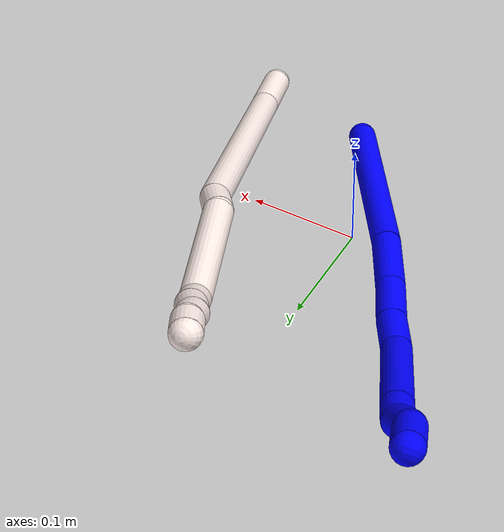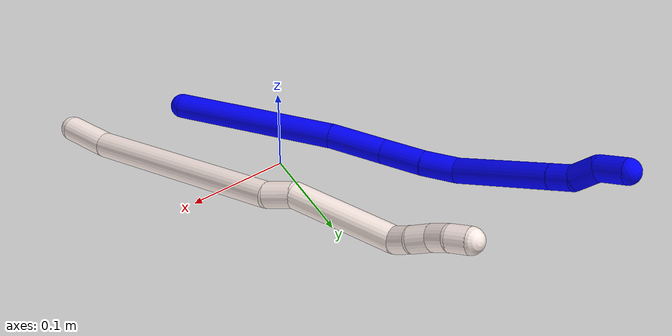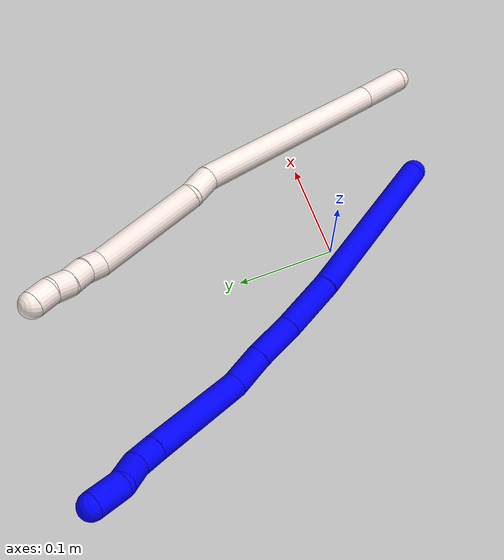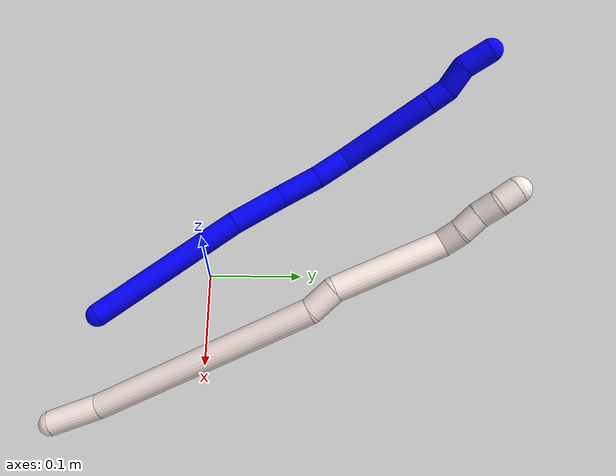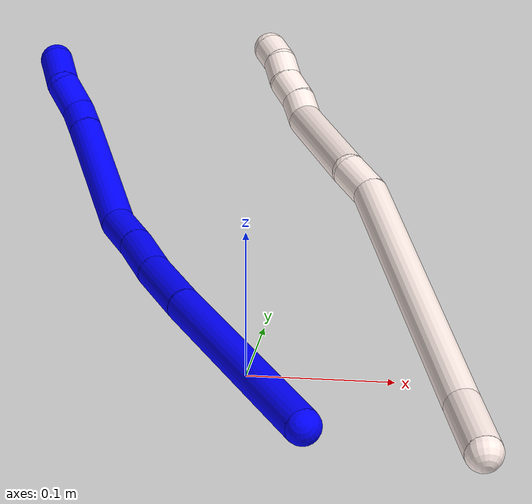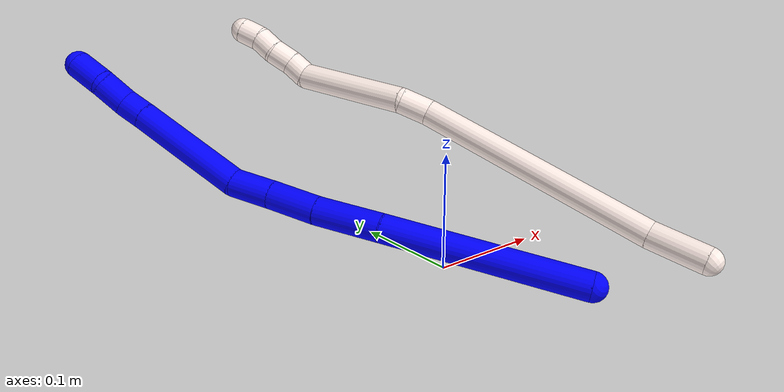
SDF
<sdf version="1.7">
 <world name="default">
  <model name="1">
   <static>0</static>
   <link name="1">
    <collision name="collision-cylinder-e_1_1_4">
     <pose>-0.017314 0.068207 0.05084 -0.930255 -0.200786 0.101019</pose>
     <geometry><cylinder><radius>0.0125</radius><length>0.173628</length></cylinder></geometry>
     <surface>
      <friction><ode><mu>1.16</mu><mu2>1.16</mu2><slip1>0</slip1><slip2>0</slip2></ode></friction>
      <contact><ode><kp>1e+06</kp><kd>1</kd><max_vel>0</max_vel><min_depth>0.001</min_depth></ode></contact>
     </surface>
    </collision>
    <visual name="visual-cylinder-e_1_1_4">
     <pose>-0.017314 0.068207 0.05084 -0.930255 -0.200786 0.101019</pose>
     <geometry><cylinder><radius>0.0125</radius><length>0.173628</length></cylinder></geometry>
     <material><ambient>0 0 1 1</ambient></material>
    </visual>
    <collision name="collision-cylinder-e_2_4_5">
     <pose>-0.041291 0.157869 0.120547 -0.849537 -0.229104 0.103987</pose>
     <geometry><cylinder><radius>0.0125</radius><length>0.058674</length></cylinder></geometry>
     <surface>
      <friction><ode><mu>1.16</mu><mu2>1.16</mu2><slip1>0</slip1><slip2>0</slip2></ode></friction>
      <contact><ode><kp>1e+06</kp><kd>1</kd><max_vel>0</max_vel><min_depth>0.001</min_depth></ode></contact>
     </surface>
    </collision>
    <visual name="visual-cylinder-e_2_4_5">
     <pose>-0.041291 0.157869 0.120547 -0.849537 -0.229104 0.103987</pose>
     <geometry><cylinder><radius>0.0125</radius><length>0.058674</length></cylinder></geometry>
     <material><ambient>0 0 1 1</ambient></material>
    </visual>
    <collision name="collision-cylinder-e_3_5_6">
     <pose>-0.054452 0.195398 0.153132 -0.864239 -0.298334 0.138396</pose>
     <geometry><cylinder><radius>0.0125</radius><length>0.044217</length></cylinder></geometry>
     <surface>
      <friction><ode><mu>1.16</mu><mu2>1.16</mu2><slip1>0</slip1><slip2>0</slip2></ode></friction>
      <contact><ode><kp>1e+06</kp><kd>1</kd><max_vel>0</max_vel><min_depth>0.001</min_depth></ode></contact>
     </surface>
    </collision>
    <visual name="visual-cylinder-e_3_5_6">
     <pose>-0.054452 0.195398 0.153132 -0.864239 -0.298334 0.138396</pose>
     <geometry><cylinder><radius>0.0125</radius><length>0.044217</length></cylinder></geometry>
     <material><ambient>0 0 1 1</ambient></material>
    </visual>
    <collision name="collision-cylinder-e_4_6_7">
     <pose>-0.065413 0.225719 0.177469 -0.930389 -0.246058 0.123973</pose>
     <geometry><cylinder><radius>0.0125</radius><length>0.036641</length></cylinder></geometry>
     <surface>
      <friction><ode><mu>1.16</mu><mu2>1.16</mu2><slip1>0</slip1><slip2>0</slip2></ode></friction>
      <contact><ode><kp>1e+06</kp><kd>1</kd><max_vel>0</max_vel><min_depth>0.001</min_depth></ode></contact>
     </surface>
    </collision>
    <visual name="visual-cylinder-e_4_6_7">
     <pose>-0.065413 0.225719 0.177469 -0.930389 -0.246058 0.123973</pose>
     <geometry><cylinder><radius>0.0125</radius><length>0.036641</length></cylinder></geometry>
     <material><ambient>0 0 1 1</ambient></material>
    </visual>
    <collision name="collision-cylinder-e_5_7_8">
     <pose>-0.095527 0.281477 0.208779 -1.10834 -0.505182 0.316783</pose>
     <geometry><cylinder><radius>0.0125</radius><length>0.106005</length></cylinder></geometry>
     <surface>
      <friction><ode><mu>1.16</mu><mu2>1.16</mu2><slip1>0</slip1><slip2>0</slip2></ode></friction>
      <contact><ode><kp>1e+06</kp><kd>1</kd><max_vel>0</max_vel><min_depth>0.001</min_depth></ode></contact>
     </surface>
    </collision>
    <visual name="visual-cylinder-e_5_7_8">
     <pose>-0.095527 0.281477 0.208779 -1.10834 -0.505182 0.316783</pose>
     <geometry><cylinder><radius>0.0125</radius><length>0.106005</length></cylinder></geometry>
     <material><ambient>0 0 1 1</ambient></material>
    </visual>
    <collision name="collision-cylinder-e_6_8_9">
     <pose>-0.126527 0.33211 0.234056 -1.10526 -0.482513 0.301192</pose>
     <geometry><cylinder><radius>0.0125</radius><length>0.023054</length></cylinder></geometry>
     <surface>
      <friction><ode><mu>1.16</mu><mu2>1.16</mu2><slip1>0</slip1><slip2>0</slip2></ode></friction>
      <contact><ode><kp>1e+06</kp><kd>1</kd><max_vel>0</max_vel><min_depth>0.001</min_depth></ode></contact>
     </surface>
    </collision>
    <visual name="visual-cylinder-e_6_8_9">
     <pose>-0.126527 0.33211 0.234056 -1.10526 -0.482513 0.301192</pose>
     <geometry><cylinder><radius>0.0125</radius><length>0.023054</length></cylinder></geometry>
     <material><ambient>0 0 1 1</ambient></material>
    </visual>
    <collision name="collision-cylinder-e_7_9_10">
     <pose>-0.137068 0.353756 0.239118 -1.53256 -0.39286 0.378475</pose>
     <geometry><cylinder><radius>0.0125</radius><length>0.027128</length></cylinder></geometry>
     <surface>
      <friction><ode><mu>1.16</mu><mu2>1.16</mu2><slip1>0</slip1><slip2>0</slip2></ode></friction>
      <contact><ode><kp>1e+06</kp><kd>1</kd><max_vel>0</max_vel><min_depth>0.001</min_depth></ode></contact>
     </surface>
    </collision>
    <visual name="visual-cylinder-e_7_9_10">
     <pose>-0.137068 0.353756 0.239118 -1.53256 -0.39286 0.378475</pose>
     <geometry><cylinder><radius>0.0125</radius><length>0.027128</length></cylinder></geometry>
     <material><ambient>0 0 1 1</ambient></material>
    </visual>
    <collision name="collision-cylinder-e_8_10_2">
     <pose>-0.15017 0.377737 0.246002 -1.06116 -0.542239 0.323315</pose>
     <geometry><cylinder><radius>0.0125</radius><length>0.030653</length></cylinder></geometry>
     <surface>
      <friction><ode><mu>1.16</mu><mu2>1.16</mu2><slip1>0</slip1><slip2>0</slip2></ode></friction>
      <contact><ode><kp>1e+06</kp><kd>1</kd><max_vel>0</max_vel><min_depth>0.001</min_depth></ode></contact>
     </surface>
    </collision>
    <visual name="visual-cylinder-e_8_10_2">
     <pose>-0.15017 0.377737 0.246002 -1.06116 -0.542239 0.323315</pose>
     <geometry><cylinder><radius>0.0125</radius><length>0.030653</length></cylinder></geometry>
     <material><ambient>0 0 1 1</ambient></material>
    </visual>
    <collision name="collision-sphere-2">
     <pose>-0.158079 0.389197 0.252406 0 -0 0</pose>
     <geometry><sphere><radius>0.0125</radius></sphere></geometry>
     <surface>
      <friction><ode><mu>1.16</mu><mu2>1.16</mu2><slip1>0</slip1><slip2>0</slip2></ode></friction>
      <contact><ode><kp>1e+06</kp><kd>1</kd><max_vel>0</max_vel><min_depth>0.001</min_depth></ode></contact>
     </surface>
    </collision>
    <visual name="visual-sphere-2">
     <pose>-0.158079 0.389197 0.252406 0 -0 0</pose>
     <geometry><sphere><radius>0.0125</radius></sphere></geometry>
     <material><ambient>0 0 1 1</ambient></material>
    </visual>
    <collision name="collision-sphere-10">
     <pose>-0.142261 0.366278 0.239597 0 -0 0</pose>
     <geometry><sphere><radius>0.0125</radius></sphere></geometry>
     <surface>
      <friction><ode><mu>1.16</mu><mu2>1.16</mu2><slip1>0</slip1><slip2>0</slip2></ode></friction>
      <contact><ode><kp>1e+06</kp><kd>1</kd><max_vel>0</max_vel><min_depth>0.001</min_depth></ode></contact>
     </surface>
    </collision>
    <visual name="visual-sphere-10">
     <pose>-0.142261 0.366278 0.239597 0 -0 0</pose>
     <geometry><sphere><radius>0.0125</radius></sphere></geometry>
     <material><ambient>0 0 1 1</ambient></material>
    </visual>
    <collision name="collision-sphere-9">
     <pose>-0.131875 0.341235 0.238639 0 -0 0</pose>
     <geometry><sphere><radius>0.0125</radius></sphere></geometry>
     <surface>
      <friction><ode><mu>1.16</mu><mu2>1.16</mu2><slip1>0</slip1><slip2>0</slip2></ode></friction>
      <contact><ode><kp>1e+06</kp><kd>1</kd><max_vel>0</max_vel><min_depth>0.001</min_depth></ode></contact>
     </surface>
    </collision>
    <visual name="visual-sphere-9">
     <pose>-0.131875 0.341235 0.238639 0 -0 0</pose>
     <geometry><sphere><radius>0.0125</radius></sphere></geometry>
     <material><ambient>0 0 1 1</ambient></material>
    </visual>
    <collision name="collision-sphere-4">
     <pose>-0.034628 0.136413 0.101681 0 -0 0</pose>
     <geometry><sphere><radius>0.0125</radius></sphere></geometry>
     <surface>
      <friction><ode><mu>1.16</mu><mu2>1.16</mu2><slip1>0</slip1><slip2>0</slip2></ode></friction>
      <contact><ode><kp>1e+06</kp><kd>1</kd><max_vel>0</max_vel><min_depth>0.001</min_depth></ode></contact>
     </surface>
    </collision>
    <visual name="visual-sphere-4">
     <pose>-0.034628 0.136413 0.101681 0 -0 0</pose>
     <geometry><sphere><radius>0.0125</radius></sphere></geometry>
     <material><ambient>0 0 1 1</ambient></material>
    </visual>
    <collision name="collision-sphere-1">
     <geometry><sphere><radius>0.0125</radius></sphere></geometry>
     <surface>
      <friction><ode><mu>1.16</mu><mu2>1.16</mu2><slip1>0</slip1><slip2>0</slip2></ode></friction>
      <contact><ode><kp>1e+06</kp><kd>1</kd><max_vel>0</max_vel><min_depth>0.001</min_depth></ode></contact>
     </surface>
    </collision>
    <visual name="visual-sphere-1">
     <geometry><sphere><radius>0.0125</radius></sphere></geometry>
     <material><ambient>0 0 1 1</ambient></material>
    </visual>
    <collision name="collision-sphere-8">
     <pose>-0.121178 0.322986 0.229472 0 -0 0</pose>
     <geometry><sphere><radius>0.0125</radius></sphere></geometry>
     <surface>
      <friction><ode><mu>1.16</mu><mu2>1.16</mu2><slip1>0</slip1><slip2>0</slip2></ode></friction>
      <contact><ode><kp>1e+06</kp><kd>1</kd><max_vel>0</max_vel><min_depth>0.001</min_depth></ode></contact>
     </surface>
    </collision>
    <visual name="visual-sphere-8">
     <pose>-0.121178 0.322986 0.229472 0 -0 0</pose>
     <geometry><sphere><radius>0.0125</radius></sphere></geometry>
     <material><ambient>0 0 1 1</ambient></material>
    </visual>
    <collision name="collision-sphere-5">
     <pose>-0.047954 0.179325 0.139413 0 -0 0</pose>
     <geometry><sphere><radius>0.0125</radius></sphere></geometry>
     <surface>
      <friction><ode><mu>1.16</mu><mu2>1.16</mu2><slip1>0</slip1><slip2>0</slip2></ode></friction>
      <contact><ode><kp>1e+06</kp><kd>1</kd><max_vel>0</max_vel><min_depth>0.001</min_depth></ode></contact>
     </surface>
    </collision>
    <visual name="visual-sphere-5">
     <pose>-0.047954 0.179325 0.139413 0 -0 0</pose>
     <geometry><sphere><radius>0.0125</radius></sphere></geometry>
     <material><ambient>0 0 1 1</ambient></material>
    </visual>
    <collision name="collision-sphere-6">
     <pose>-0.06095 0.211471 0.166851 0 -0 0</pose>
     <geometry><sphere><radius>0.0125</radius></sphere></geometry>
     <surface>
      <friction><ode><mu>1.16</mu><mu2>1.16</mu2><slip1>0</slip1><slip2>0</slip2></ode></friction>
      <contact><ode><kp>1e+06</kp><kd>1</kd><max_vel>0</max_vel><min_depth>0.001</min_depth></ode></contact>
     </surface>
    </collision>
    <visual name="visual-sphere-6">
     <pose>-0.06095 0.211471 0.166851 0 -0 0</pose>
     <geometry><sphere><radius>0.0125</radius></sphere></geometry>
     <material><ambient>0 0 1 1</ambient></material>
    </visual>
    <collision name="collision-sphere-7">
     <pose>-0.069875 0.239967 0.188086 0 -0 0</pose>
     <geometry><sphere><radius>0.0125</radius></sphere></geometry>
     <surface>
      <friction><ode><mu>1.16</mu><mu2>1.16</mu2><slip1>0</slip1><slip2>0</slip2></ode></friction>
      <contact><ode><kp>1e+06</kp><kd>1</kd><max_vel>0</max_vel><min_depth>0.001</min_depth></ode></contact>
     </surface>
    </collision>
    <visual name="visual-sphere-7">
     <pose>-0.069875 0.239967 0.188086 0 -0 0</pose>
     <geometry><sphere><radius>0.0125</radius></sphere></geometry>
     <material><ambient>0 0 1 1</ambient></material>
    </visual>
    <inertial>
     <pose>-0.063196 0.193371 0.141458 0 -0 0</pose>
     <mass>0.5</mass>
     <inertia>
      <ixx>0.000623</ixx>
      <ixy>0</ixy>
      <ixz>0</ixz>
      <iyy>0.000463</iyy>
      <iyz>0</iyz>
      <izz>-0.00029</izz>
     </inertia>
    </inertial>
   </link>
   <pose>0.050509 -0.115081 0.011494 2.46132 0.714027 -2.41729</pose>
  </model>
  <model name="11">
   <static>0</static>
   <link name="11">
    <collision name="collision-cylinder-e_1_1_4">
     <pose>0.002523 0.009903 0.023756 -0.394956 0.09771 -0.019565</pose>
     <geometry><cylinder><radius>0.0125</radius><length>0.051722</length></cylinder></geometry>
     <surface>
      <friction><ode><mu>1.16</mu><mu2>1.16</mu2><slip1>0</slip1><slip2>0</slip2></ode></friction>
      <contact><ode><kp>1e+06</kp><kd>1</kd><max_vel>0</max_vel><min_depth>0.001</min_depth></ode></contact>
     </surface>
    </collision>
    <visual name="visual-cylinder-e_1_1_4">
     <pose>0.002523 0.009903 0.023756 -0.394956 0.09771 -0.019565</pose>
     <geometry><cylinder><radius>0.0125</radius><length>0.051722</length></cylinder></geometry>
     <material><ambient>1 0.933333 0.909804 1</ambient></material>
    </visual>
    <collision name="collision-cylinder-e_2_4_5">
     <pose>0.006067 0.053339 0.156837 -0.297623 0.00893 -0.001339</pose>
     <geometry><cylinder><radius>0.0125</radius><length>0.228713</length></cylinder></geometry>
     <surface>
      <friction><ode><mu>1.16</mu><mu2>1.16</mu2><slip1>0</slip1><slip2>0</slip2></ode></friction>
      <contact><ode><kp>1e+06</kp><kd>1</kd><max_vel>0</max_vel><min_depth>0.001</min_depth></ode></contact>
     </surface>
    </collision>
    <visual name="visual-cylinder-e_2_4_5">
     <pose>0.006067 0.053339 0.156837 -0.297623 0.00893 -0.001339</pose>
     <geometry><cylinder><radius>0.0125</radius><length>0.228713</length></cylinder></geometry>
     <material><ambient>1 0.933333 0.909804 1</ambient></material>
    </visual>
    <collision name="collision-cylinder-e_3_5_6">
     <pose>0.002902 0.091858 0.279072 -0.368494 -0.293734 0.055124</pose>
     <geometry><cylinder><radius>0.0125</radius><length>0.028918</length></cylinder></geometry>
     <surface>
      <friction><ode><mu>1.16</mu><mu2>1.16</mu2><slip1>0</slip1><slip2>0</slip2></ode></friction>
      <contact><ode><kp>1e+06</kp><kd>1</kd><max_vel>0</max_vel><min_depth>0.001</min_depth></ode></contact>
     </surface>
    </collision>
    <visual name="visual-cylinder-e_3_5_6">
     <pose>0.002902 0.091858 0.279072 -0.368494 -0.293734 0.055124</pose>
     <geometry><cylinder><radius>0.0125</radius><length>0.028918</length></cylinder></geometry>
     <material><ambient>1 0.933333 0.909804 1</ambient></material>
    </visual>
    <collision name="collision-cylinder-e_4_6_7">
     <pose>0.00102 0.124323 0.338643 -0.532242 0.042523 -0.011593</pose>
     <geometry><cylinder><radius>0.0125</radius><length>0.108399</length></cylinder></geometry>
     <surface>
      <friction><ode><mu>1.16</mu><mu2>1.16</mu2><slip1>0</slip1><slip2>0</slip2></ode></friction>
      <contact><ode><kp>1e+06</kp><kd>1</kd><max_vel>0</max_vel><min_depth>0.001</min_depth></ode></contact>
     </surface>
    </collision>
    <visual name="visual-cylinder-e_4_6_7">
     <pose>0.00102 0.124323 0.338643 -0.532242 0.042523 -0.011593</pose>
     <geometry><cylinder><radius>0.0125</radius><length>0.108399</length></cylinder></geometry>
     <material><ambient>1 0.933333 0.909804 1</ambient></material>
    </visual>
    <collision name="collision-cylinder-e_5_7_8">
     <pose>0.001808 0.152477 0.395402 -0.066689 -0.148636 0.004967</pose>
     <geometry><cylinder><radius>0.0125</radius><length>0.020469</length></cylinder></geometry>
     <surface>
      <friction><ode><mu>1.16</mu><mu2>1.16</mu2><slip1>0</slip1><slip2>0</slip2></ode></friction>
      <contact><ode><kp>1e+06</kp><kd>1</kd><max_vel>0</max_vel><min_depth>0.001</min_depth></ode></contact>
     </surface>
    </collision>
    <visual name="visual-cylinder-e_5_7_8">
     <pose>0.001808 0.152477 0.395402 -0.066689 -0.148636 0.004967</pose>
     <geometry><cylinder><radius>0.0125</radius><length>0.020469</length></cylinder></geometry>
     <material><ambient>1 0.933333 0.909804 1</ambient></material>
    </visual>
    <collision name="collision-cylinder-e_6_8_9">
     <pose>-0.003009 0.15513 0.415544 -0.19453 -0.311976 0.030687</pose>
     <geometry><cylinder><radius>0.0125</radius><length>0.021508</length></cylinder></geometry>
     <surface>
      <friction><ode><mu>1.16</mu><mu2>1.16</mu2><slip1>0</slip1><slip2>0</slip2></ode></friction>
      <contact><ode><kp>1e+06</kp><kd>1</kd><max_vel>0</max_vel><min_depth>0.001</min_depth></ode></contact>
     </surface>
    </collision>
    <visual name="visual-cylinder-e_6_8_9">
     <pose>-0.003009 0.15513 0.415544 -0.19453 -0.311976 0.030687</pose>
     <geometry><cylinder><radius>0.0125</radius><length>0.021508</length></cylinder></geometry>
     <material><ambient>1 0.933333 0.909804 1</ambient></material>
    </visual>
    <collision name="collision-cylinder-e_7_9_10">
     <pose>-0.007501 0.157768 0.435528 -0.066181 -0.118983 0.003943</pose>
     <geometry><cylinder><radius>0.0125</radius><length>0.020069</length></cylinder></geometry>
     <surface>
      <friction><ode><mu>1.16</mu><mu2>1.16</mu2><slip1>0</slip1><slip2>0</slip2></ode></friction>
      <contact><ode><kp>1e+06</kp><kd>1</kd><max_vel>0</max_vel><min_depth>0.001</min_depth></ode></contact>
     </surface>
    </collision>
    <visual name="visual-cylinder-e_7_9_10">
     <pose>-0.007501 0.157768 0.435528 -0.066181 -0.118983 0.003943</pose>
     <geometry><cylinder><radius>0.0125</radius><length>0.020069</length></cylinder></geometry>
     <material><ambient>1 0.933333 0.909804 1</ambient></material>
    </visual>
    <collision name="collision-cylinder-e_8_10_2">
     <pose>-0.010282 0.161698 0.454892 -0.334186 -0.15812 0.026724</pose>
     <geometry><cylinder><radius>0.0125</radius><length>0.020201</length></cylinder></geometry>
     <surface>
      <friction><ode><mu>1.16</mu><mu2>1.16</mu2><slip1>0</slip1><slip2>0</slip2></ode></friction>
      <contact><ode><kp>1e+06</kp><kd>1</kd><max_vel>0</max_vel><min_depth>0.001</min_depth></ode></contact>
     </surface>
    </collision>
    <visual name="visual-cylinder-e_8_10_2">
     <pose>-0.010282 0.161698 0.454892 -0.334186 -0.15812 0.026724</pose>
     <geometry><cylinder><radius>0.0125</radius><length>0.020201</length></cylinder></geometry>
     <material><ambient>1 0.933333 0.909804 1</ambient></material>
    </visual>
    <collision name="collision-sphere-2">
     <pose>-0.011873 0.16497 0.464315 0 -0 0</pose>
     <geometry><sphere><radius>0.0125</radius></sphere></geometry>
     <surface>
      <friction><ode><mu>1.16</mu><mu2>1.16</mu2><slip1>0</slip1><slip2>0</slip2></ode></friction>
      <contact><ode><kp>1e+06</kp><kd>1</kd><max_vel>0</max_vel><min_depth>0.001</min_depth></ode></contact>
     </surface>
    </collision>
    <visual name="visual-sphere-2">
     <pose>-0.011873 0.16497 0.464315 0 -0 0</pose>
     <geometry><sphere><radius>0.0125</radius></sphere></geometry>
     <material><ambient>1 0.933333 0.909804 1</ambient></material>
    </visual>
    <collision name="collision-sphere-10">
     <pose>-0.008692 0.158427 0.445469 0 -0 0</pose>
     <geometry><sphere><radius>0.0125</radius></sphere></geometry>
     <surface>
      <friction><ode><mu>1.16</mu><mu2>1.16</mu2><slip1>0</slip1><slip2>0</slip2></ode></friction>
      <contact><ode><kp>1e+06</kp><kd>1</kd><max_vel>0</max_vel><min_depth>0.001</min_depth></ode></contact>
     </surface>
    </collision>
    <visual name="visual-sphere-10">
     <pose>-0.008692 0.158427 0.445469 0 -0 0</pose>
     <geometry><sphere><radius>0.0125</radius></sphere></geometry>
     <material><ambient>1 0.933333 0.909804 1</ambient></material>
    </visual>
    <collision name="collision-sphere-9">
     <pose>-0.00631 0.157109 0.425586 0 -0 0</pose>
     <geometry><sphere><radius>0.0125</radius></sphere></geometry>
     <surface>
      <friction><ode><mu>1.16</mu><mu2>1.16</mu2><slip1>0</slip1><slip2>0</slip2></ode></friction>
      <contact><ode><kp>1e+06</kp><kd>1</kd><max_vel>0</max_vel><min_depth>0.001</min_depth></ode></contact>
     </surface>
    </collision>
    <visual name="visual-sphere-9">
     <pose>-0.00631 0.157109 0.425586 0 -0 0</pose>
     <geometry><sphere><radius>0.0125</radius></sphere></geometry>
     <material><ambient>1 0.933333 0.909804 1</ambient></material>
    </visual>
    <collision name="collision-sphere-4">
     <pose>0.005046 0.019806 0.047512 0 -0 0</pose>
     <geometry><sphere><radius>0.0125</radius></sphere></geometry>
     <surface>
      <friction><ode><mu>1.16</mu><mu2>1.16</mu2><slip1>0</slip1><slip2>0</slip2></ode></friction>
      <contact><ode><kp>1e+06</kp><kd>1</kd><max_vel>0</max_vel><min_depth>0.001</min_depth></ode></contact>
     </surface>
    </collision>
    <visual name="visual-sphere-4">
     <pose>0.005046 0.019806 0.047512 0 -0 0</pose>
     <geometry><sphere><radius>0.0125</radius></sphere></geometry>
     <material><ambient>1 0.933333 0.909804 1</ambient></material>
    </visual>
    <collision name="collision-sphere-1">
     <geometry><sphere><radius>0.0125</radius></sphere></geometry>
     <surface>
      <friction><ode><mu>1.16</mu><mu2>1.16</mu2><slip1>0</slip1><slip2>0</slip2></ode></friction>
      <contact><ode><kp>1e+06</kp><kd>1</kd><max_vel>0</max_vel><min_depth>0.001</min_depth></ode></contact>
     </surface>
    </collision>
    <visual name="visual-sphere-1">
     <geometry><sphere><radius>0.0125</radius></sphere></geometry>
     <material><ambient>1 0.933333 0.909804 1</ambient></material>
    </visual>
    <collision name="collision-sphere-8">
     <pose>0.000292 0.153152 0.405502 0 -0 0</pose>
     <geometry><sphere><radius>0.0125</radius></sphere></geometry>
     <surface>
      <friction><ode><mu>1.16</mu><mu2>1.16</mu2><slip1>0</slip1><slip2>0</slip2></ode></friction>
      <contact><ode><kp>1e+06</kp><kd>1</kd><max_vel>0</max_vel><min_depth>0.001</min_depth></ode></contact>
     </surface>
    </collision>
    <visual name="visual-sphere-8">
     <pose>0.000292 0.153152 0.405502 0 -0 0</pose>
     <geometry><sphere><radius>0.0125</radius></sphere></geometry>
     <material><ambient>1 0.933333 0.909804 1</ambient></material>
    </visual>
    <collision name="collision-sphere-5">
     <pose>0.007088 0.086873 0.266161 0 -0 0</pose>
     <geometry><sphere><radius>0.0125</radius></sphere></geometry>
     <surface>
      <friction><ode><mu>1.16</mu><mu2>1.16</mu2><slip1>0</slip1><slip2>0</slip2></ode></friction>
      <contact><ode><kp>1e+06</kp><kd>1</kd><max_vel>0</max_vel><min_depth>0.001</min_depth></ode></contact>
     </surface>
    </collision>
    <visual name="visual-sphere-5">
     <pose>0.007088 0.086873 0.266161 0 -0 0</pose>
     <geometry><sphere><radius>0.0125</radius></sphere></geometry>
     <material><ambient>1 0.933333 0.909804 1</ambient></material>
    </visual>
    <collision name="collision-sphere-6">
     <pose>-0.001285 0.096844 0.291983 0 -0 0</pose>
     <geometry><sphere><radius>0.0125</radius></sphere></geometry>
     <surface>
      <friction><ode><mu>1.16</mu><mu2>1.16</mu2><slip1>0</slip1><slip2>0</slip2></ode></friction>
      <contact><ode><kp>1e+06</kp><kd>1</kd><max_vel>0</max_vel><min_depth>0.001</min_depth></ode></contact>
     </surface>
    </collision>
    <visual name="visual-sphere-6">
     <pose>-0.001285 0.096844 0.291983 0 -0 0</pose>
     <geometry><sphere><radius>0.0125</radius></sphere></geometry>
     <material><ambient>1 0.933333 0.909804 1</ambient></material>
    </visual>
    <collision name="collision-sphere-7">
     <pose>0.003324 0.151803 0.385303 0 -0 0</pose>
     <geometry><sphere><radius>0.0125</radius></sphere></geometry>
     <surface>
      <friction><ode><mu>1.16</mu><mu2>1.16</mu2><slip1>0</slip1><slip2>0</slip2></ode></friction>
      <contact><ode><kp>1e+06</kp><kd>1</kd><max_vel>0</max_vel><min_depth>0.001</min_depth></ode></contact>
     </surface>
    </collision>
    <visual name="visual-sphere-7">
     <pose>0.003324 0.151803 0.385303 0 -0 0</pose>
     <geometry><sphere><radius>0.0125</radius></sphere></geometry>
     <material><ambient>1 0.933333 0.909804 1</ambient></material>
    </visual>
    <inertial>
     <pose>0.002653 0.08347 0.233679 0 -0 0</pose>
     <mass>0.5</mass>
     <inertia>
      <ixx>0.001135</ixx>
      <ixy>0</ixy>
      <ixz>0</ixz>
      <iyy>0.001089</iyy>
      <iyz>0</iyz>
      <izz>-0.000335</izz>
     </inertia>
    </inertial>
   </link>
   <pose>0.16227 -0.145639 0.012491 -0.902579 0.333631 0.483682</pose>
  </model>
 </world>
</sdf>
